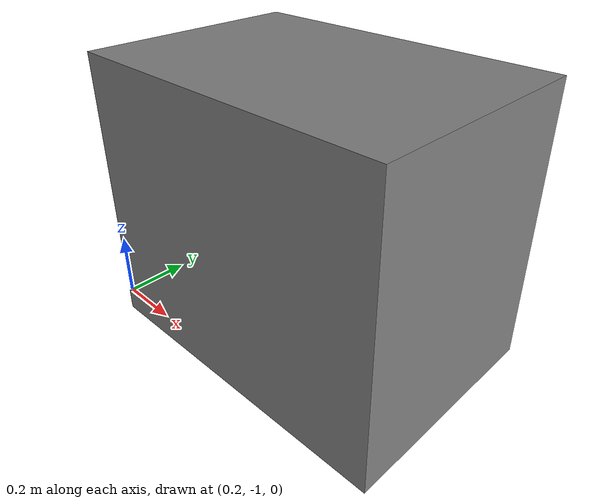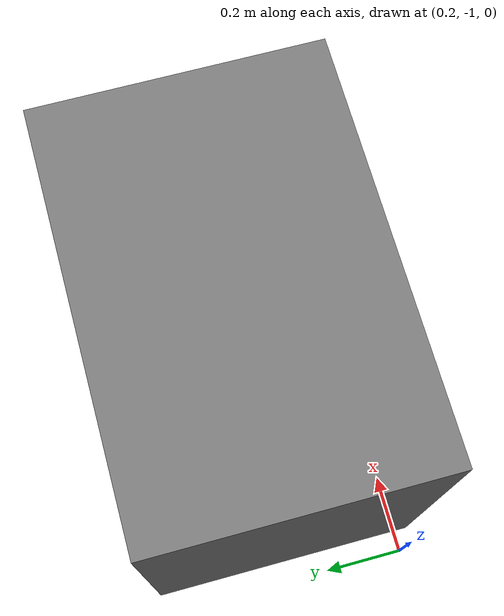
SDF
<?xml version="1.0" ?>
<sdf version="1.6">
  <model name="franka_cart">
    <static>true</static>

    <link name="franka_cart_link">

      <visual name="franka_cart_visual">
        <pose>0.75 -0.7 0.40005 0 0 0</pose>
        <geometry>
          <box>
            <size> 0.9890125 0.6746875 0.8397875 </size>
          </box>
        </geometry>
        <material>
            <ambient>0.0 0.0 0.0 1.0</ambient>
            <diffuse>0.5 0.5 0.5 1.0</diffuse>
        </material>
      </visual>

      <collision name="franka_cart_collision">
        <pose>-1 -1.375 0.41989375 0 0 0</pose>
        <geometry>
          <box>
            <size> 0.9890125 0.6746875 0.8397875 </size>
          </box>
        </geometry>
      </collision>

    </link>
  </model>
</sdf>
